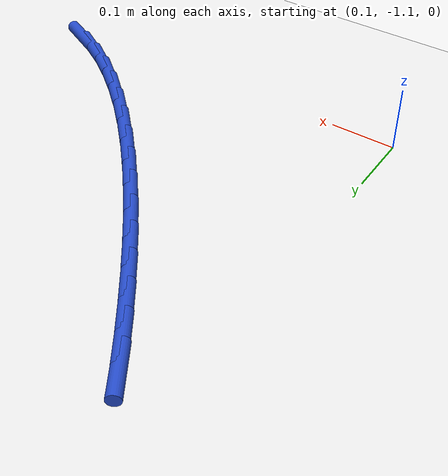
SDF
<sdf version="1.6">
 <world name="default">
  <model name="ground_plane">
   <static>1</static>
   <link name="link">
    <collision name="collision">
     <geometry><plane><normal>0 0 1</normal><size>100 100</size></plane></geometry>
     <surface><friction><ode><mu>100</mu><mu2>50</mu2></ode></friction></surface>
    </collision>
    <visual name="visual">
     <cast_shadows>0</cast_shadows>
     <geometry><plane><normal>0 0 1</normal><size>100 100</size></plane></geometry>
     <material>
      <script><uri>file://media/materials/scripts/gazebo.material</uri><name>Gazebo/WhiteGlow</name></script>
     </material>
    </visual>
   </link>
  </model>
  <model name="line">
   <link name="link_161">
    <pose>0.6747313019985666 -1.0713514297405462 0.01 0 1.57 -0.4379147040460474</pose>
    <collision name="collision">
     <geometry><cylinder><radius>0.01</radius><length>0.08</length></cylinder></geometry>
    </collision>
    <visual name="visual">
     <material>
      <script><name>Gazebo/Blue</name><uri>file://media/materials/scripts/gazebo.material</uri></script>
     </material>
     <geometry><cylinder><radius>0.01</radius><length>0.08</length></cylinder></geometry>
    </visual>
   </link>
   <link name="link_162">
    <pose>0.6369048317072153 -1.0536397315071717 0.01 0 1.57 -0.528080148505392</pose>
    <collision name="collision">
     <geometry><cylinder><radius>0.01</radius><length>0.08</length></cylinder></geometry>
    </collision>
    <visual name="visual">
     <material>
      <script><name>Gazebo/Blue</name><uri>file://media/materials/scripts/gazebo.material</uri></script>
     </material>
     <geometry><cylinder><radius>0.01</radius><length>0.08</length></cylinder></geometry>
    </visual>
   </link>
   <link name="link_163">
    <pose>0.5990272396121358 -1.031544180077713 0.01 0 1.57 -0.6031266255757619</pose>
    <collision name="collision">
     <geometry><cylinder><radius>0.01</radius><length>0.08</length></cylinder></geometry>
    </collision>
    <visual name="visual">
     <material>
      <script><name>Gazebo/Blue</name><uri>file://media/materials/scripts/gazebo.material</uri></script>
     </material>
     <geometry><cylinder><radius>0.01</radius><length>0.08</length></cylinder></geometry>
    </visual>
   </link>
   <link name="link_164">
    <pose>0.561251037573284 -1.0055263239522396 0.01 0 1.57 -0.6659165889990718</pose>
    <collision name="collision">
     <geometry><cylinder><radius>0.01</radius><length>0.08</length></cylinder></geometry>
    </collision>
    <visual name="visual">
     <material>
      <script><name>Gazebo/Blue</name><uri>file://media/materials/scripts/gazebo.material</uri></script>
     </material>
     <geometry><cylinder><radius>0.01</radius><length>0.08</length></cylinder></geometry>
    </visual>
   </link>
   <link name="link_165">
    <pose>0.5237287374506177 -0.9760477116308236 0.01 0 1.57 -0.7188516595925999</pose>
    <collision name="collision">
     <geometry><cylinder><radius>0.01</radius><length>0.08</length></cylinder></geometry>
    </collision>
    <visual name="visual">
     <material>
      <script><name>Gazebo/Blue</name><uri>file://media/materials/scripts/gazebo.material</uri></script>
     </material>
     <geometry><cylinder><radius>0.01</radius><length>0.08</length></cylinder></geometry>
    </visual>
   </link>
   <link name="link_166">
    <pose>0.48661285110409397 -0.9435698916135351 0.01 0 1.57 -0.7638641312687623</pose>
    <collision name="collision">
     <geometry><cylinder><radius>0.01</radius><length>0.08</length></cylinder></geometry>
    </collision>
    <visual name="visual">
     <material>
      <script><name>Gazebo/Blue</name><uri>file://media/materials/scripts/gazebo.material</uri></script>
     </material>
     <geometry><cylinder><radius>0.01</radius><length>0.08</length></cylinder></geometry>
    </visual>
   </link>
   <link name="link_167">
    <pose>0.4500558903936686 -0.9085544124004451 0.01 0 1.57 -0.8024806257217494</pose>
    <collision name="collision">
     <geometry><cylinder><radius>0.01</radius><length>0.08</length></cylinder></geometry>
    </collision>
    <visual name="visual">
     <material>
      <script><name>Gazebo/Blue</name><uri>file://media/materials/scripts/gazebo.material</uri></script>
     </material>
     <geometry><cylinder><radius>0.01</radius><length>0.08</length></cylinder></geometry>
    </visual>
   </link>
   <link name="link_168">
    <pose>0.41421036717929866 -0.871462822491624 0.01 0 1.57 -0.8359006202040324</pose>
    <collision name="collision">
     <geometry><cylinder><radius>0.01</radius><length>0.08</length></cylinder></geometry>
    </collision>
    <visual name="visual">
     <material>
      <script><name>Gazebo/Blue</name><uri>file://media/materials/scripts/gazebo.material</uri></script>
     </material>
     <geometry><cylinder><radius>0.01</radius><length>0.08</length></cylinder></geometry>
    </visual>
   </link>
   <link name="link_169">
    <pose>0.3792287933209415 -0.8327566703871432 0.01 0 1.57 -0.8650681250278196</pose>
    <collision name="collision">
     <geometry><cylinder><radius>0.01</radius><length>0.08</length></cylinder></geometry>
    </collision>
    <visual name="visual">
     <material>
      <script><name>Gazebo/Blue</name><uri>file://media/materials/scripts/gazebo.material</uri></script>
     </material>
     <geometry><cylinder><radius>0.01</radius><length>0.08</length></cylinder></geometry>
    </visual>
   </link>
   <link name="link_170">
    <pose>0.3452636806785537 -0.792897504587073 0.01 0 1.57 -0.8907305680756809</pose>
    <collision name="collision">
     <geometry><cylinder><radius>0.01</radius><length>0.08</length></cylinder></geometry>
    </collision>
    <visual name="visual">
     <material>
      <script><name>Gazebo/Blue</name><uri>file://media/materials/scripts/gazebo.material</uri></script>
     </material>
     <geometry><cylinder><radius>0.01</radius><length>0.08</length></cylinder></geometry>
    </visual>
   </link>
   <link name="link_171">
    <pose>0.31246754111209213 -0.7523468735914848 0.01 0 1.57 -0.9134850746421556</pose>
    <collision name="collision">
     <geometry><cylinder><radius>0.01</radius><length>0.08</length></cylinder></geometry>
    </collision>
    <visual name="visual">
     <material>
      <script><name>Gazebo/Blue</name><uri>file://media/materials/scripts/gazebo.material</uri></script>
     </material>
     <geometry><cylinder><radius>0.01</radius><length>0.08</length></cylinder></geometry>
    </visual>
   </link>
   <link name="link_172">
    <pose>0.2809928864815143 -0.7115663259004498 0.01 0 1.57 -0.9338142839562994</pose>
    <collision name="collision">
     <geometry><cylinder><radius>0.01</radius><length>0.08</length></cylinder></geometry>
    </collision>
    <visual name="visual">
     <material>
      <script><name>Gazebo/Blue</name><uri>file://media/materials/scripts/gazebo.material</uri></script>
     </material>
     <geometry><cylinder><radius>0.01</radius><length>0.08</length></cylinder></geometry>
    </visual>
   </link>
   <link name="link_173">
    <pose>0.2509922286467759 -0.6710174100140375 0.01 0 1.57 -0.9521141831899133</pose>
    <collision name="collision">
     <geometry><cylinder><radius>0.01</radius><length>0.08</length></cylinder></geometry>
    </collision>
    <visual name="visual">
     <material>
      <script><name>Gazebo/Blue</name><uri>file://media/materials/scripts/gazebo.material</uri></script>
     </material>
     <geometry><cylinder><radius>0.01</radius><length>0.08</length></cylinder></geometry>
    </visual>
   </link>
   <link name="link_174">
    <pose>0.22261807946783418 -0.6311616744323191 0.01 0 1.57 -0.9689052157469177</pose>
    <collision name="collision">
     <geometry><cylinder><radius>0.01</radius><length>0.08</length></cylinder></geometry>
    </collision>
    <visual name="visual">
     <material>
      <script><name>Gazebo/Blue</name><uri>file://media/materials/scripts/gazebo.material</uri></script>
     </material>
     <geometry><cylinder><radius>0.01</radius><length>0.08</length></cylinder></geometry>
    </visual>
   </link>
   <link name="link_175">
    <pose>0.19601657284840476 -0.5924357140476395 0.01 0 1.57 -0.9877137454479165</pose>
    <collision name="collision">
     <geometry><cylinder><radius>0.01</radius><length>0.08</length></cylinder></geometry>
    </collision>
    <visual name="visual">
     <material>
      <script><name>Gazebo/Blue</name><uri>file://media/materials/scripts/gazebo.material</uri></script>
     </material>
     <geometry><cylinder><radius>0.01</radius><length>0.08</length></cylinder></geometry>
    </visual>
   </link>
   <link name="link_176">
    <pose>0.17122445999155078 -0.5548481664411308 0.01 0 1.57 -1.0114597823445226</pose>
    <collision name="collision">
     <geometry><cylinder><radius>0.01</radius><length>0.08</length></cylinder></geometry>
    </collision>
    <visual name="visual">
     <material>
      <script><name>Gazebo/Blue</name><uri>file://media/materials/scripts/gazebo.material</uri></script>
     </material>
     <geometry><cylinder><radius>0.01</radius><length>0.08</length></cylinder></geometry>
    </visual>
   </link>
  </model>
 </world>
</sdf>
